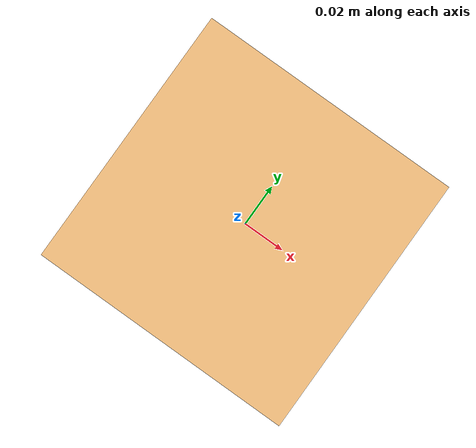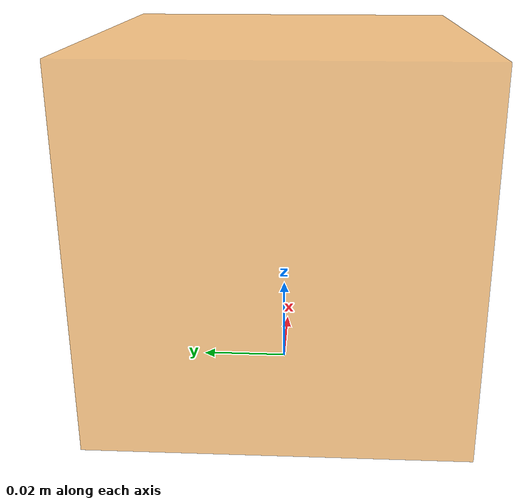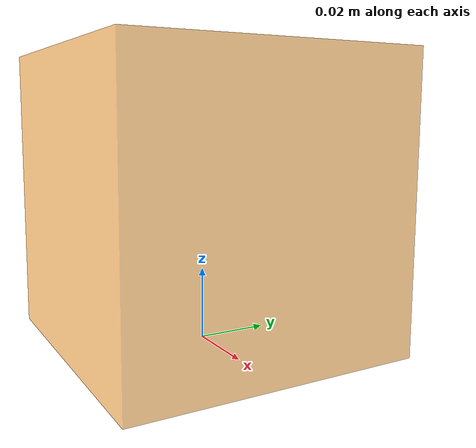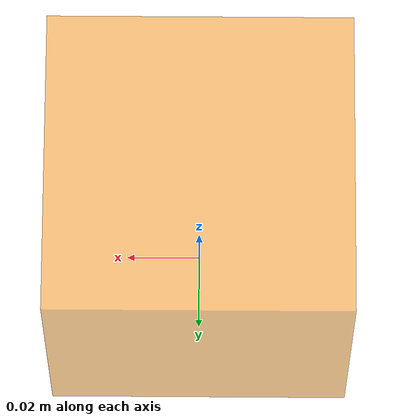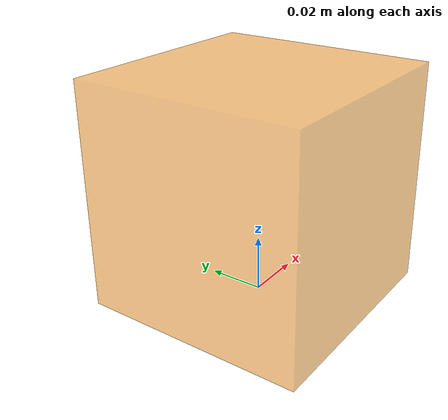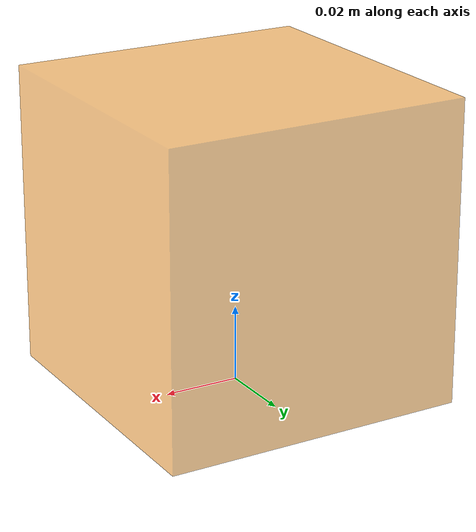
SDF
<sdf version="1.7">
    <model name="box">
        <pose>0 0 0.04 0 0 0</pose>
        <link name="box_link">
            <inertial>
                <inertia>
		    <ixx>0.000128</ixx>
		    <iyy>0.000128</iyy>
		    <izz>0.000128</izz>
                </inertia>
                <mass>0.12</mass>
            </inertial>

            <!-- Box Visual -->
            <visual name="visual_box">
                <geometry>
                    <box>
                        <size>0.08 0.08 0.08</size>
                    </box>
                </geometry>
                <material>
                    <diffuse>1.0 0.55 0.0 0.5</diffuse>
                </material>
            </visual>
            <!-- Box Collision -->
            <collision name="collision_box">
                <geometry>
                    <box>
                        <size>0.08 0.08 0.08</size>
                    </box>
                </geometry>
                <drake:proximity_properties>
                    <drake:compliant_hydroelastic/>
                    <drake:hydroelastic_modulus>1e7</drake:hydroelastic_modulus>
                    <drake:mu_dynamic>0.4</drake:mu_dynamic>
                    <drake:hunt_crossley_dissipation>15.25</drake:hunt_crossley_dissipation>
                    <drake:mesh_resolution_hint>0.01</drake:mesh_resolution_hint>
                </drake:proximity_properties>
            </collision>

        </link>
    </model>
</sdf>

            <!-- Four Corner Spheres -->
            <collision name="collision_sphere_1">
                <pose>-0.04 -0.04 -0.04 0 0 0</pose>
                <geometry>
                    <sphere>
                        <radius>0.001</radius>
                    </sphere>
                </geometry>
                <drake:proximity_properties>
                    <drake:rigid_hydroelastic/>
                    <drake:hydroelastic_modulus>1e7</drake:hydroelastic_modulus>
                    <drake:mu_dynamic>0.4</drake:mu_dynamic>
                    <drake:hunt_crossley_dissipation>15.25</drake:hunt_crossley_dissipation>
                    <drake:mesh_resolution_hint>0.005</drake:mesh_resolution_hint>
                </drake:proximity_properties>
            </collision>

            <collision name="collision_sphere_2">
                <pose>0.04 -0.04 -0.04 0 0 0</pose>
                <geometry>
                    <sphere>
                        <radius>0.001</radius>
                    </sphere>
                </geometry>
                <drake:proximity_properties>
                    <drake:rigid_hydroelastic/>
                    <drake:hydroelastic_modulus>1e7</drake:hydroelastic_modulus>
                    <drake:mu_dynamic>0.4</drake:mu_dynamic>
                    <drake:hunt_crossley_dissipation>15.25</drake:hunt_crossley_dissipation>
                    <drake:mesh_resolution_hint>0.005</drake:mesh_resolution_hint>
                </drake:proximity_properties>
            </collision>

            <collision name="collision_sphere_3">
                <pose>-0.04 0.04 -0.04 0 0 0</pose>
                <geometry>
                    <sphere>
                        <radius>0.001</radius>
                    </sphere>
                </geometry>
                <drake:proximity_properties>
                    <drake:rigid_hydroelastic/>
                    <drake:hydroelastic_modulus>1e7</drake:hydroelastic_modulus>
                    <drake:mu_dynamic>0.4</drake:mu_dynamic>
                    <drake:hunt_crossley_dissipation>15.25</drake:hunt_crossley_dissipation>
                    <drake:mesh_resolution_hint>0.005</drake:mesh_resolution_hint>
                </drake:proximity_properties>
            </collision>

            <collision name="collision_sphere_4">
                <pose>0.04 0.04 -0.04 0 0 0</pose>
                <geometry>
                    <sphere>
                        <radius>0.001</radius>
                    </sphere>
                </geometry>
                <drake:proximity_properties>
                    <drake:rigid_hydroelastic/>
                    <drake:hydroelastic_modulus>1e7</drake:hydroelastic_modulus>
                    <drake:mu_dynamic>0.4</drake:mu_dynamic>
                    <drake:hunt_crossley_dissipation>15.25</drake:hunt_crossley_dissipation>
                    <drake:mesh_resolution_hint>0.005</drake:mesh_resolution_hint>
                </drake:proximity_properties>
            </collision>

            <!-- Four Top Corner Spheres -->
		<collision name="collision_sphere_5">
		    <pose>-0.04 -0.04 0.04 0 0 0</pose>
		    <geometry>
			<sphere>
			    <radius>0.005</radius>
			</sphere>
		    </geometry>
	        <drake:proximity_properties>
	            <drake:compliant_hydroelastic/>
	            <drake:hydroelastic_modulus>1e7</drake:hydroelastic_modulus>
	            <drake:mu_dynamic>0.4</drake:mu_dynamic>
	            <drake:hunt_crossley_dissipation>15.25</drake:hunt_crossley_dissipation>
	            <drake:mesh_resolution_hint>0.01</drake:mesh_resolution_hint>
	        </drake:proximity_properties>
	    </collision>

		<collision name="collision_sphere_6">
		    <pose>0.04 -0.04 0.04 0 0 0</pose>
		    <geometry>
			<sphere>
			    <radius>0.005</radius>
			</sphere>
		    </geometry>
                <drake:proximity_properties>
                    <drake:compliant_hydroelastic/>
                    <drake:hydroelastic_modulus>1e7</drake:hydroelastic_modulus>
                    <drake:mu_dynamic>0.4</drake:mu_dynamic>
                    <drake:hunt_crossley_dissipation>15.25</drake:hunt_crossley_dissipation>
                    <drake:mesh_resolution_hint>0.01</drake:mesh_resolution_hint>
                </drake:proximity_properties>
            </collision>

		<collision name="collision_sphere_7">
		    <pose>-0.04 0.04 0.04 0 0 0</pose>
		    <geometry>
			<sphere>
			    <radius>0.005</radius>
			</sphere>
		    </geometry>
                <drake:proximity_properties>
                    <drake:compliant_hydroelastic/>
                    <drake:hydroelastic_modulus>1e7</drake:hydroelastic_modulus>
                    <drake:mu_dynamic>0.4</drake:mu_dynamic>
                    <drake:hunt_crossley_dissipation>15.25</drake:hunt_crossley_dissipation>
                    <drake:mesh_resolution_hint>0.01</drake:mesh_resolution_hint>
                </drake:proximity_properties>
            </collision>

		<collision name="collision_sphere_8">
		    <pose>0.04 0.04 0.04 0 0 0</pose>
		    <geometry>
			<sphere>
			    <radius>0.005</radius>
			</sphere>
		    </geometry>
                <drake:proximity_properties>
                    <drake:compliant_hydroelastic/>
                    <drake:hydroelastic_modulus>1e7</drake:hydroelastic_modulus>
                    <drake:mu_dynamic>0.4</drake:mu_dynamic>
                    <drake:hunt_crossley_dissipation>15.25</drake:hunt_crossley_dissipation>
                    <drake:mesh_resolution_hint>0.01</drake:mesh_resolution_hint>
                </drake:proximity_properties>
            </collision>
<drake:mesh_resolution_hint>5.05</drake:mesh_resolution_hint>
